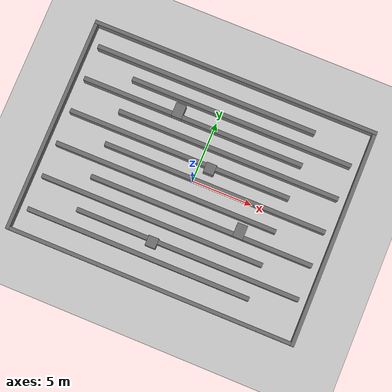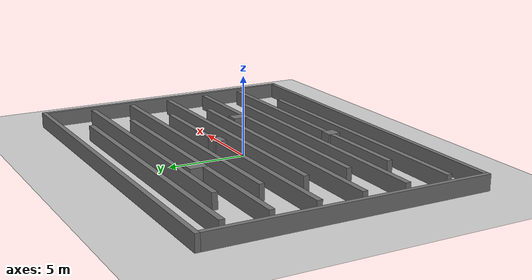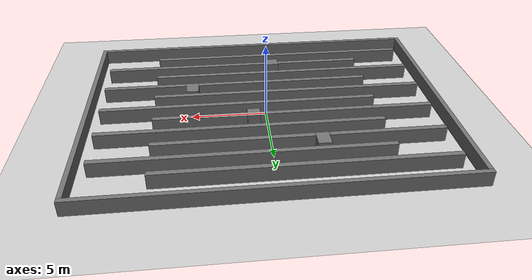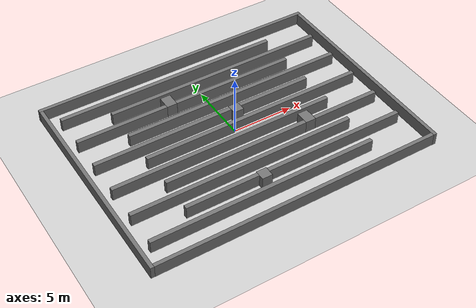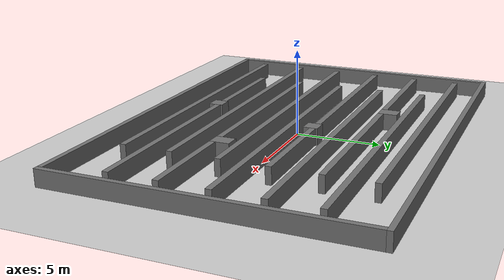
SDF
<sdf version='1.7'>
  <world name='maze_zigzag_01'>
    <include><uri>model://sun</uri></include>
    <include><uri>model://ground_plane</uri></include>
    <model name='benchmark_obstacles'>
      <static>true</static>
      <link name='obstacles_link'>
        <collision name='obs_0001_collision'>
          <pose>0.000 8.850 0.500 0 0 0</pose>
          <geometry><box><size>24.000 0.300 1.000</size></box></geometry>
          <surface><contact><collide_without_contact>false</collide_without_contact></contact></surface>
        </collision>
        <visual name='obs_0001_visual'>
          <pose>0.000 8.850 0.500 0 0 0</pose>
          <geometry><box><size>24.000 0.300 1.000</size></box></geometry>
          <material>
            <ambient>0.25 0.25 0.25 1</ambient>
            <diffuse>0.45 0.45 0.45 1</diffuse>
            <specular>0.05 0.05 0.05 1</specular>
          </material>
        </visual>
        <collision name='obs_0002_collision'>
          <pose>-11.850 -0.150 0.500 0 0 0</pose>
          <geometry><box><size>0.300 17.700 1.000</size></box></geometry>
          <surface><contact><collide_without_contact>false</collide_without_contact></contact></surface>
        </collision>
        <visual name='obs_0002_visual'>
          <pose>-11.850 -0.150 0.500 0 0 0</pose>
          <geometry><box><size>0.300 17.700 1.000</size></box></geometry>
          <material>
            <ambient>0.25 0.25 0.25 1</ambient>
            <diffuse>0.45 0.45 0.45 1</diffuse>
            <specular>0.05 0.05 0.05 1</specular>
          </material>
        </visual>
        <collision name='obs_0003_collision'>
          <pose>11.850 -0.150 0.500 0 0 0</pose>
          <geometry><box><size>0.300 17.700 1.000</size></box></geometry>
          <surface><contact><collide_without_contact>false</collide_without_contact></contact></surface>
        </collision>
        <visual name='obs_0003_visual'>
          <pose>11.850 -0.150 0.500 0 0 0</pose>
          <geometry><box><size>0.300 17.700 1.000</size></box></geometry>
          <material>
            <ambient>0.25 0.25 0.25 1</ambient>
            <diffuse>0.45 0.45 0.45 1</diffuse>
            <specular>0.05 0.05 0.05 1</specular>
          </material>
        </visual>
        <collision name='obs_0004_collision'>
          <pose>-1.750 7.075 0.500 0 0 0</pose>
          <geometry><box><size>18.500 0.350 1.000</size></box></geometry>
          <surface><contact><collide_without_contact>false</collide_without_contact></contact></surface>
        </collision>
        <visual name='obs_0004_visual'>
          <pose>-1.750 7.075 0.500 0 0 0</pose>
          <geometry><box><size>18.500 0.350 1.000</size></box></geometry>
          <material>
            <ambient>0.25 0.25 0.25 1</ambient>
            <diffuse>0.45 0.45 0.45 1</diffuse>
            <specular>0.05 0.05 0.05 1</specular>
          </material>
        </visual>
        <collision name='obs_0005_collision'>
          <pose>1.800 5.675 0.500 0 0 0</pose>
          <geometry><box><size>18.500 0.350 1.000</size></box></geometry>
          <surface><contact><collide_without_contact>false</collide_without_contact></contact></surface>
        </collision>
        <visual name='obs_0005_visual'>
          <pose>1.800 5.675 0.500 0 0 0</pose>
          <geometry><box><size>18.500 0.350 1.000</size></box></geometry>
          <material>
            <ambient>0.25 0.25 0.25 1</ambient>
            <diffuse>0.45 0.45 0.45 1</diffuse>
            <specular>0.05 0.05 0.05 1</specular>
          </material>
        </visual>
        <collision name='obs_0006_collision'>
          <pose>-3.075 4.675 0.500 0 0 0</pose>
          <geometry><box><size>0.850 1.150 1.000</size></box></geometry>
          <surface><contact><collide_without_contact>false</collide_without_contact></contact></surface>
        </collision>
        <visual name='obs_0006_visual'>
          <pose>-3.075 4.675 0.500 0 0 0</pose>
          <geometry><box><size>0.850 1.150 1.000</size></box></geometry>
          <material>
            <ambient>0.25 0.25 0.25 1</ambient>
            <diffuse>0.45 0.45 0.45 1</diffuse>
            <specular>0.05 0.05 0.05 1</specular>
          </material>
        </visual>
        <collision name='obs_0007_collision'>
          <pose>-7.250 4.275 0.500 0 0 0</pose>
          <geometry><box><size>7.500 0.350 1.000</size></box></geometry>
          <surface><contact><collide_without_contact>false</collide_without_contact></contact></surface>
        </collision>
        <visual name='obs_0007_visual'>
          <pose>-7.250 4.275 0.500 0 0 0</pose>
          <geometry><box><size>7.500 0.350 1.000</size></box></geometry>
          <material>
            <ambient>0.25 0.25 0.25 1</ambient>
            <diffuse>0.45 0.45 0.45 1</diffuse>
            <specular>0.05 0.05 0.05 1</specular>
          </material>
        </visual>
        <collision name='obs_0008_collision'>
          <pose>2.425 4.275 0.500 0 0 0</pose>
          <geometry><box><size>10.150 0.350 1.000</size></box></geometry>
          <surface><contact><collide_without_contact>false</collide_without_contact></contact></surface>
        </collision>
        <visual name='obs_0008_visual'>
          <pose>2.425 4.275 0.500 0 0 0</pose>
          <geometry><box><size>10.150 0.350 1.000</size></box></geometry>
          <material>
            <ambient>0.25 0.25 0.25 1</ambient>
            <diffuse>0.45 0.45 0.45 1</diffuse>
            <specular>0.05 0.05 0.05 1</specular>
          </material>
        </visual>
        <collision name='obs_0009_collision'>
          <pose>1.800 2.875 0.500 0 0 0</pose>
          <geometry><box><size>18.500 0.350 1.000</size></box></geometry>
          <surface><contact><collide_without_contact>false</collide_without_contact></contact></surface>
        </collision>
        <visual name='obs_0009_visual'>
          <pose>1.800 2.875 0.500 0 0 0</pose>
          <geometry><box><size>18.500 0.350 1.000</size></box></geometry>
          <material>
            <ambient>0.25 0.25 0.25 1</ambient>
            <diffuse>0.45 0.45 0.45 1</diffuse>
            <specular>0.05 0.05 0.05 1</specular>
          </material>
        </visual>
        <collision name='obs_0010_collision'>
          <pose>0.925 1.325 0.500 0 0 0</pose>
          <geometry><box><size>0.850 0.850 1.000</size></box></geometry>
          <surface><contact><collide_without_contact>false</collide_without_contact></contact></surface>
        </collision>
        <visual name='obs_0010_visual'>
          <pose>0.925 1.325 0.500 0 0 0</pose>
          <geometry><box><size>0.850 0.850 1.000</size></box></geometry>
          <material>
            <ambient>0.25 0.25 0.25 1</ambient>
            <diffuse>0.45 0.45 0.45 1</diffuse>
            <specular>0.05 0.05 0.05 1</specular>
          </material>
        </visual>
        <collision name='obs_0011_collision'>
          <pose>-5.250 1.475 0.500 0 0 0</pose>
          <geometry><box><size>11.500 0.350 1.000</size></box></geometry>
          <surface><contact><collide_without_contact>false</collide_without_contact></contact></surface>
        </collision>
        <visual name='obs_0011_visual'>
          <pose>-5.250 1.475 0.500 0 0 0</pose>
          <geometry><box><size>11.500 0.350 1.000</size></box></geometry>
          <material>
            <ambient>0.25 0.25 0.25 1</ambient>
            <diffuse>0.45 0.45 0.45 1</diffuse>
            <specular>0.05 0.05 0.05 1</specular>
          </material>
        </visual>
        <collision name='obs_0012_collision'>
          <pose>4.425 1.475 0.500 0 0 0</pose>
          <geometry><box><size>6.150 0.350 1.000</size></box></geometry>
          <surface><contact><collide_without_contact>false</collide_without_contact></contact></surface>
        </collision>
        <visual name='obs_0012_visual'>
          <pose>4.425 1.475 0.500 0 0 0</pose>
          <geometry><box><size>6.150 0.350 1.000</size></box></geometry>
          <material>
            <ambient>0.25 0.25 0.25 1</ambient>
            <diffuse>0.45 0.45 0.45 1</diffuse>
            <specular>0.05 0.05 0.05 1</specular>
          </material>
        </visual>
        <collision name='obs_0013_collision'>
          <pose>1.800 0.075 0.500 0 0 0</pose>
          <geometry><box><size>18.500 0.350 1.000</size></box></geometry>
          <surface><contact><collide_without_contact>false</collide_without_contact></contact></surface>
        </collision>
        <visual name='obs_0013_visual'>
          <pose>1.800 0.075 0.500 0 0 0</pose>
          <geometry><box><size>18.500 0.350 1.000</size></box></geometry>
          <material>
            <ambient>0.25 0.25 0.25 1</ambient>
            <diffuse>0.45 0.45 0.45 1</diffuse>
            <specular>0.05 0.05 0.05 1</specular>
          </material>
        </visual>
        <collision name='obs_0014_collision'>
          <pose>-1.750 -1.325 0.500 0 0 0</pose>
          <geometry><box><size>18.500 0.350 1.000</size></box></geometry>
          <surface><contact><collide_without_contact>false</collide_without_contact></contact></surface>
        </collision>
        <visual name='obs_0014_visual'>
          <pose>-1.750 -1.325 0.500 0 0 0</pose>
          <geometry><box><size>18.500 0.350 1.000</size></box></geometry>
          <material>
            <ambient>0.25 0.25 0.25 1</ambient>
            <diffuse>0.45 0.45 0.45 1</diffuse>
            <specular>0.05 0.05 0.05 1</specular>
          </material>
        </visual>
        <collision name='obs_0015_collision'>
          <pose>4.925 -2.325 0.500 0 0 0</pose>
          <geometry><box><size>0.850 1.150 1.000</size></box></geometry>
          <surface><contact><collide_without_contact>false</collide_without_contact></contact></surface>
        </collision>
        <visual name='obs_0015_visual'>
          <pose>4.925 -2.325 0.500 0 0 0</pose>
          <geometry><box><size>0.850 1.150 1.000</size></box></geometry>
          <material>
            <ambient>0.25 0.25 0.25 1</ambient>
            <diffuse>0.45 0.45 0.45 1</diffuse>
            <specular>0.05 0.05 0.05 1</specular>
          </material>
        </visual>
        <collision name='obs_0016_collision'>
          <pose>-1.475 -2.725 0.500 0 0 0</pose>
          <geometry><box><size>11.950 0.350 1.000</size></box></geometry>
          <surface><contact><collide_without_contact>false</collide_without_contact></contact></surface>
        </collision>
        <visual name='obs_0016_visual'>
          <pose>-1.475 -2.725 0.500 0 0 0</pose>
          <geometry><box><size>11.950 0.350 1.000</size></box></geometry>
          <material>
            <ambient>0.25 0.25 0.25 1</ambient>
            <diffuse>0.45 0.45 0.45 1</diffuse>
            <specular>0.05 0.05 0.05 1</specular>
          </material>
        </visual>
        <collision name='obs_0017_collision'>
          <pose>8.200 -2.725 0.500 0 0 0</pose>
          <geometry><box><size>5.700 0.350 1.000</size></box></geometry>
          <surface><contact><collide_without_contact>false</collide_without_contact></contact></surface>
        </collision>
        <visual name='obs_0017_visual'>
          <pose>8.200 -2.725 0.500 0 0 0</pose>
          <geometry><box><size>5.700 0.350 1.000</size></box></geometry>
          <material>
            <ambient>0.25 0.25 0.25 1</ambient>
            <diffuse>0.45 0.45 0.45 1</diffuse>
            <specular>0.05 0.05 0.05 1</specular>
          </material>
        </visual>
        <collision name='obs_0018_collision'>
          <pose>-1.750 -4.125 0.500 0 0 0</pose>
          <geometry><box><size>18.500 0.350 1.000</size></box></geometry>
          <surface><contact><collide_without_contact>false</collide_without_contact></contact></surface>
        </collision>
        <visual name='obs_0018_visual'>
          <pose>-1.750 -4.125 0.500 0 0 0</pose>
          <geometry><box><size>18.500 0.350 1.000</size></box></geometry>
          <material>
            <ambient>0.25 0.25 0.25 1</ambient>
            <diffuse>0.45 0.45 0.45 1</diffuse>
            <specular>0.05 0.05 0.05 1</specular>
          </material>
        </visual>
        <collision name='obs_0019_collision'>
          <pose>-1.075 -5.675 0.500 0 0 0</pose>
          <geometry><box><size>0.850 0.850 1.000</size></box></geometry>
          <surface><contact><collide_without_contact>false</collide_without_contact></contact></surface>
        </collision>
        <visual name='obs_0019_visual'>
          <pose>-1.075 -5.675 0.500 0 0 0</pose>
          <geometry><box><size>0.850 0.850 1.000</size></box></geometry>
          <material>
            <ambient>0.25 0.25 0.25 1</ambient>
            <diffuse>0.45 0.45 0.45 1</diffuse>
            <specular>0.05 0.05 0.05 1</specular>
          </material>
        </visual>
        <collision name='obs_0020_collision'>
          <pose>-4.475 -5.525 0.500 0 0 0</pose>
          <geometry><box><size>5.950 0.350 1.000</size></box></geometry>
          <surface><contact><collide_without_contact>false</collide_without_contact></contact></surface>
        </collision>
        <visual name='obs_0020_visual'>
          <pose>-4.475 -5.525 0.500 0 0 0</pose>
          <geometry><box><size>5.950 0.350 1.000</size></box></geometry>
          <material>
            <ambient>0.25 0.25 0.25 1</ambient>
            <diffuse>0.45 0.45 0.45 1</diffuse>
            <specular>0.05 0.05 0.05 1</specular>
          </material>
        </visual>
        <collision name='obs_0021_collision'>
          <pose>5.200 -5.525 0.500 0 0 0</pose>
          <geometry><box><size>11.700 0.350 1.000</size></box></geometry>
          <surface><contact><collide_without_contact>false</collide_without_contact></contact></surface>
        </collision>
        <visual name='obs_0021_visual'>
          <pose>5.200 -5.525 0.500 0 0 0</pose>
          <geometry><box><size>11.700 0.350 1.000</size></box></geometry>
          <material>
            <ambient>0.25 0.25 0.25 1</ambient>
            <diffuse>0.45 0.45 0.45 1</diffuse>
            <specular>0.05 0.05 0.05 1</specular>
          </material>
        </visual>
        <collision name='obs_0022_collision'>
          <pose>-1.750 -6.925 0.500 0 0 0</pose>
          <geometry><box><size>18.500 0.350 1.000</size></box></geometry>
          <surface><contact><collide_without_contact>false</collide_without_contact></contact></surface>
        </collision>
        <visual name='obs_0022_visual'>
          <pose>-1.750 -6.925 0.500 0 0 0</pose>
          <geometry><box><size>18.500 0.350 1.000</size></box></geometry>
          <material>
            <ambient>0.25 0.25 0.25 1</ambient>
            <diffuse>0.45 0.45 0.45 1</diffuse>
            <specular>0.05 0.05 0.05 1</specular>
          </material>
        </visual>
        <collision name='obs_0023_collision'>
          <pose>0.000 -8.850 0.500 0 0 0</pose>
          <geometry><box><size>23.400 0.300 1.000</size></box></geometry>
          <surface><contact><collide_without_contact>false</collide_without_contact></contact></surface>
        </collision>
        <visual name='obs_0023_visual'>
          <pose>0.000 -8.850 0.500 0 0 0</pose>
          <geometry><box><size>23.400 0.300 1.000</size></box></geometry>
          <material>
            <ambient>0.25 0.25 0.25 1</ambient>
            <diffuse>0.45 0.45 0.45 1</diffuse>
            <specular>0.05 0.05 0.05 1</specular>
          </material>
        </visual>
      </link>
    </model>
  </world>
</sdf>
